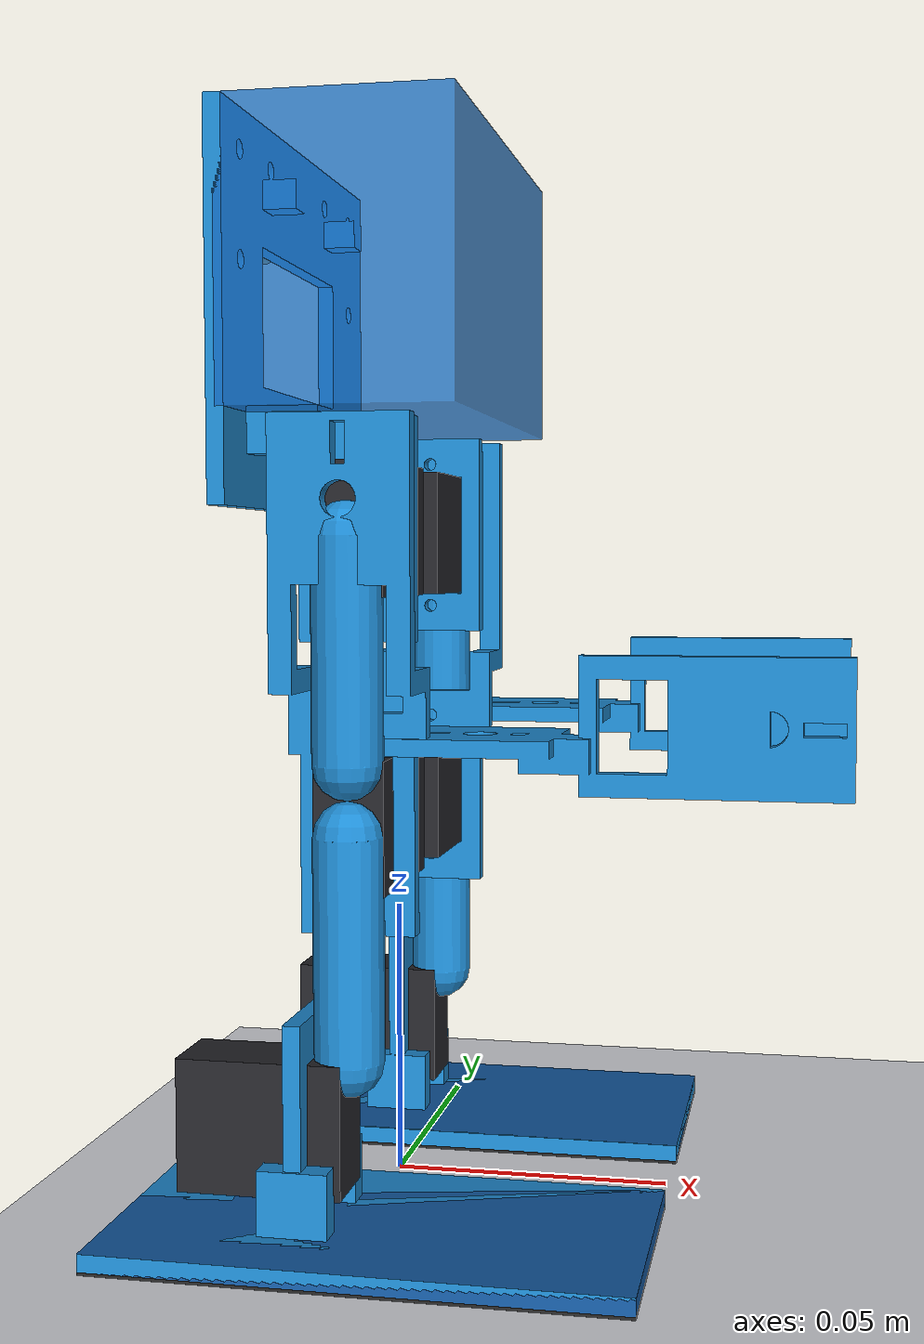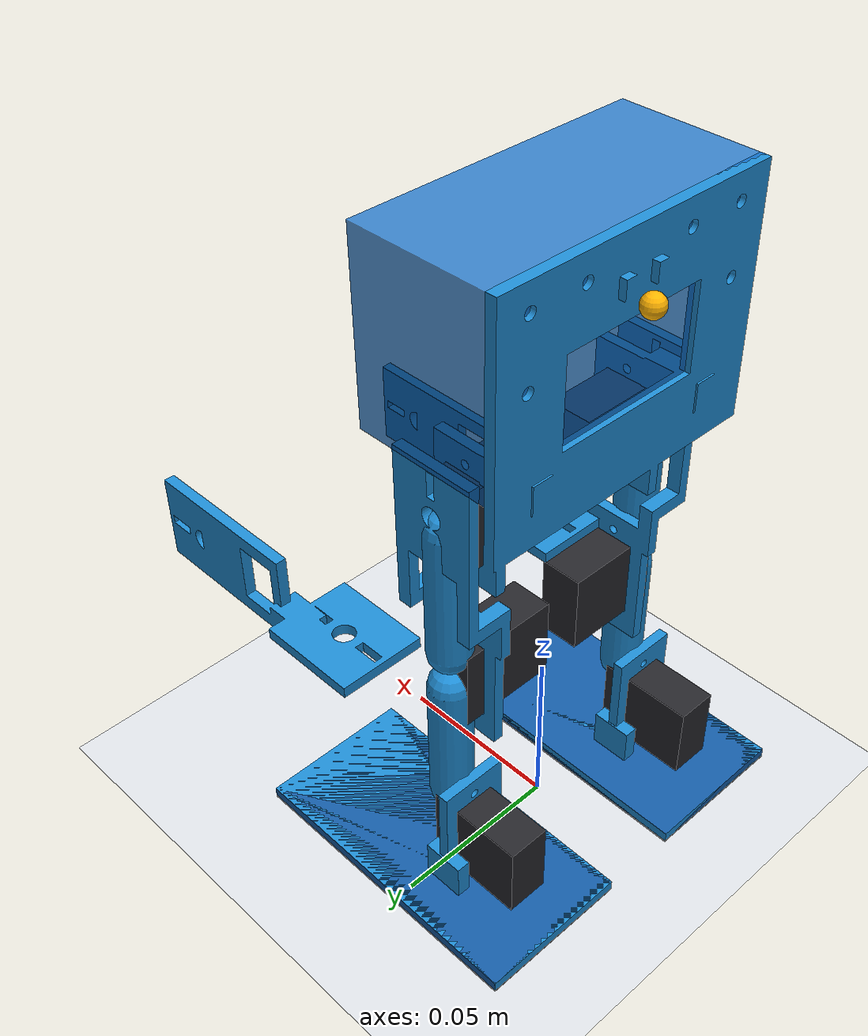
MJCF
<!-- Generated from physical_spec.json; provisional hardware model. -->
<mujoco model="SchoolBipedS6_provisional">
  <compiler angle="radian" autolimits="true" inertiafromgeom="false" />
  <option timestep="0.002" gravity="0 0 -9.81" integrator="implicitfast" iterations="60" />
  <visual>
    <global offwidth="960" offheight="720" />
    <map znear="0.002" />
  </visual>
  <default>
    <joint limited="true" damping="0.002" armature="0.000005" frictionloss="0.001" />
    <geom condim="3" friction="0.8 0.005 0.0001" solref="0.008 1" solimp="0.9 0.95 0.001" />
    <position kp="0.9" kv="0.012" forcelimited="true" forcerange="-0.08 0.08" ctrllimited="true" />
  </default>
  <asset>
    <mesh name="torso_mesh" file="cad/stl/torso.stl" scale="0.001 0.001 0.001" />
    <mesh name="left_thigh_mesh" file="cad/stl/left_thigh.stl" scale="0.001 0.001 0.001" />
    <mesh name="left_shin_mesh" file="cad/stl/left_shin.stl" scale="0.001 0.001 0.001" />
    <mesh name="left_foot_mesh" file="cad/stl/left_foot.stl" scale="0.001 0.001 0.001" />
    <mesh name="right_thigh_mesh" file="cad/stl/right_thigh.stl" scale="0.001 0.001 0.001" />
    <mesh name="right_shin_mesh" file="cad/stl/right_shin.stl" scale="0.001 0.001 0.001" />
    <mesh name="right_foot_mesh" file="cad/stl/right_foot.stl" scale="0.001 0.001 0.001" />
  </asset>
  <worldbody>
    <light pos="0 -1 2" dir="0 0 -1" diffuse="0.8 0.8 0.8" />
    <geom name="floor" type="plane" size="3 3 0.05" rgba="0.87 0.88 0.90 1" />
    <body name="torso" pos="0 0 0.154240388">
      <geom name="torso_visual" type="mesh" mesh="torso_mesh" contype="0" conaffinity="0" group="2" rgba="0.12 0.55 0.83 1" />
      <inertial mass="0.08188624774" pos="-0.007350467977 0 -0.008997271212" fullinertia="8.105527885e-05 5.228548807e-05 4.64646527e-05 2.541098842e-21 8.152129337e-06 0" />
      <freejoint name="root" />
      <geom name="torso_collision" type="box" pos="0 0 0.01" size="0.02 0.041 0.025" rgba="0.10 0.45 0.8 0.8" />
      <site name="imu_site" pos="-0.0255 0 0.018" size="0.003" rgba="1 0.7 0 1" />
      <camera name="overview" pos="0.42 -0.5 0.24" xyaxes="0.766 0.643 0 -0.26 0.31 0.916" />
      <geom name="left_hip_servo_case" type="box" pos="0 0.01975 -0.03475" size="0.0061 0.01425 0.0114" rgba="0.15 0.15 0.17 1" />
      <geom name="right_hip_servo_case" type="box" pos="0 -0.01975 -0.03475" size="0.0061 0.01425 0.0114" rgba="0.15 0.15 0.17 1" />
      <body name="left_thigh" pos="0 0.034 -0.03">
        <geom name="left_thigh_visual" type="mesh" mesh="left_thigh_mesh" contype="0" conaffinity="0" group="2" rgba="0.12 0.55 0.83 1" />
        <inertial mass="0.01897302956" pos="7.38254531e-20 -0.009433651865 -0.04297017599" fullinertia="1.075607705e-05 9.509006643e-06 2.306096954e-06 -1.321364545e-23 9.846621791e-24 -2.552040829e-06" />
        <joint name="left_hip" type="hinge" axis="0 1 0" range="-0.6108652382 0.6108652382" />
        <geom name="left_thigh_link" type="capsule" fromto="0 0 -0.006 0 0 -0.044" size="0.006" rgba="0.12 0.55 0.83 1" />
        <geom name="left_knee_servo_case" type="box" pos="0 -0.01425 -0.05475" size="0.0061 0.01425 0.0114" rgba="0.15 0.15 0.17 1" />
        <body name="left_shin" pos="0 0 -0.05">
          <geom name="left_shin_visual" type="mesh" mesh="left_shin_mesh" contype="0" conaffinity="0" group="2" rgba="0.12 0.55 0.83 1" />
          <inertial mass="0.007723103503" pos="0.001431986556 0.001714317795 -0.0226881703" fullinertia="3.771568488e-06 3.870592897e-06 4.366762365e-07 1.069363096e-08 2.608766246e-07 -1.717283681e-07" />
          <joint name="left_knee" type="hinge" axis="0 1 0" range="-0.1745329252 1.047197551" />
          <geom name="left_shin_link" type="capsule" fromto="0 0 -0.006 0 0 -0.044" size="0.006" rgba="0.12 0.55 0.83 1" />
          <body name="left_foot" pos="0 0 -0.05">
            <geom name="left_foot_visual" type="mesh" mesh="left_foot_mesh" contype="0" conaffinity="0" group="2" rgba="0.12 0.55 0.83 1" />
            <inertial mass="0.03657630976" pos="-0.001919484737 9.573768603e-21 -0.0153667454" fullinertia="7.376615256e-06 2.141873222e-05 2.153521221e-05 -9.259259754e-23 2.911645236e-06 1.500083034e-22" />
            <joint name="left_ankle" type="hinge" axis="1 0 0" range="-0.3490658504 0.3490658504" />
            <geom name="left_foot_plate" type="box" pos="0.006 0 -0.0225" size="0.045 0.0225 0.0015" rgba="0.08 0.36 0.65 1" />
            <geom name="left_foot_sole" type="box" pos="0.006 0 -0.0245" size="0.045 0.0225 0.0005" rgba="0.15 0.15 0.15 1" />
            <site name="left_foot_sole_center" pos="0.006 0 -0.025" size="0.001" />
            <geom name="left_ankle_servo_case" type="box" pos="-0.01425 0 -0.00475" size="0.01425 0.0061 0.0114" rgba="0.15 0.15 0.17 1" />
          </body>
        </body>
      </body>
      <body name="right_thigh" pos="0 -0.034 -0.03">
        <geom name="right_thigh_visual" type="mesh" mesh="right_thigh_mesh" contype="0" conaffinity="0" group="2" rgba="0.12 0.55 0.83 1" />
        <inertial mass="0.01897302956" pos="7.38254531e-20 0.009433651865 -0.04297017599" fullinertia="1.075607705e-05 9.509006643e-06 2.306096954e-06 1.321364545e-23 9.846621791e-24 2.552040829e-06" />
        <joint name="right_hip" type="hinge" axis="0 1 0" range="-0.6108652382 0.6108652382" />
        <geom name="right_thigh_link" type="capsule" fromto="0 0 -0.006 0 0 -0.044" size="0.006" rgba="0.12 0.55 0.83 1" />
        <geom name="right_knee_servo_case" type="box" pos="0 0.01425 -0.05475" size="0.0061 0.01425 0.0114" rgba="0.15 0.15 0.17 1" />
        <body name="right_shin" pos="0 0 -0.05">
          <geom name="right_shin_visual" type="mesh" mesh="right_shin_mesh" contype="0" conaffinity="0" group="2" rgba="0.12 0.55 0.83 1" />
          <inertial mass="0.007723103503" pos="0.001431986556 -0.001714317795 -0.0226881703" fullinertia="3.771568488e-06 3.870592897e-06 4.366762365e-07 -1.069363096e-08 2.608766246e-07 1.717283681e-07" />
          <joint name="right_knee" type="hinge" axis="0 1 0" range="-0.1745329252 1.047197551" />
          <geom name="right_shin_link" type="capsule" fromto="0 0 -0.006 0 0 -0.044" size="0.006" rgba="0.12 0.55 0.83 1" />
          <body name="right_foot" pos="0 0 -0.05">
            <geom name="right_foot_visual" type="mesh" mesh="right_foot_mesh" contype="0" conaffinity="0" group="2" rgba="0.12 0.55 0.83 1" />
            <inertial mass="0.03657630976" pos="-0.001919484737 -9.573768603e-21 -0.0153667454" fullinertia="7.376615256e-06 2.141873222e-05 2.153521221e-05 9.259259754e-23 2.911645236e-06 -1.500083034e-22" />
            <joint name="right_ankle" type="hinge" axis="1 0 0" range="-0.3490658504 0.3490658504" />
            <geom name="right_foot_plate" type="box" pos="0.006 0 -0.0225" size="0.045 0.0225 0.0015" rgba="0.08 0.36 0.65 1" />
            <geom name="right_foot_sole" type="box" pos="0.006 0 -0.0245" size="0.045 0.0225 0.0005" rgba="0.15 0.15 0.15 1" />
            <site name="right_foot_sole_center" pos="0.006 0 -0.025" size="0.001" />
            <geom name="right_ankle_servo_case" type="box" pos="-0.01425 0 -0.00475" size="0.01425 0.0061 0.0114" rgba="0.15 0.15 0.17 1" />
          </body>
        </body>
      </body>
    </body>
  </worldbody>
  <actuator>
    <position name="left_hip_servo" joint="left_hip" ctrlrange="-0.6108652382 0.6108652382" />
    <position name="left_knee_servo" joint="left_knee" ctrlrange="-0.1745329252 1.047197551" />
    <position name="left_ankle_servo" joint="left_ankle" ctrlrange="-0.3490658504 0.3490658504" />
    <position name="right_hip_servo" joint="right_hip" ctrlrange="-0.6108652382 0.6108652382" />
    <position name="right_knee_servo" joint="right_knee" ctrlrange="-0.1745329252 1.047197551" />
    <position name="right_ankle_servo" joint="right_ankle" ctrlrange="-0.3490658504 0.3490658504" />
  </actuator>
  <sensor>
    <gyro name="imu_gyro" site="imu_site" />
    <accelerometer name="imu_accel" site="imu_site" />
  </sensor>
  <keyframe>
    <key name="home" qpos="0 0 0.154240388 1 0 0 0 -0.1745329252 0.1745329252 0 -0.1745329252 0.1745329252 0" ctrl="-0.1745329252 0.1745329252 0 -0.1745329252 0.1745329252 0" />
  </keyframe>
</mujoco>
